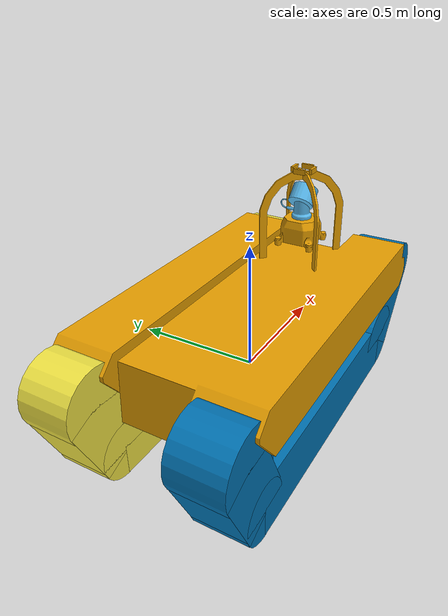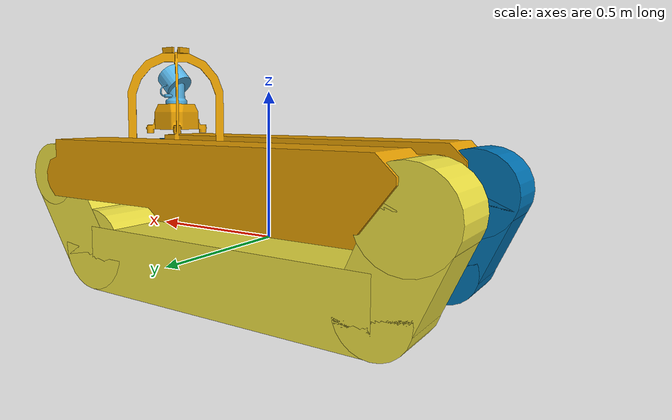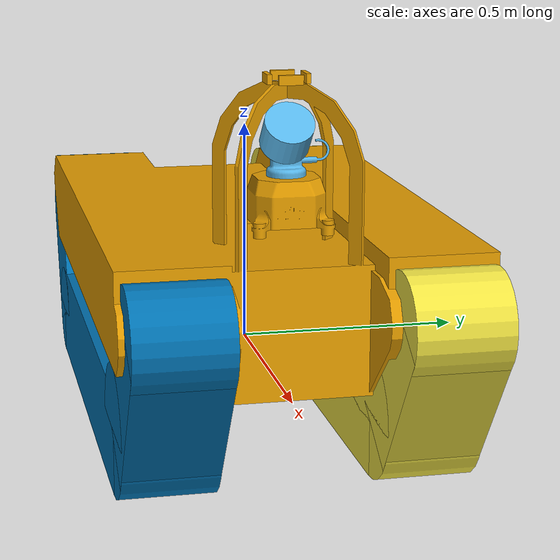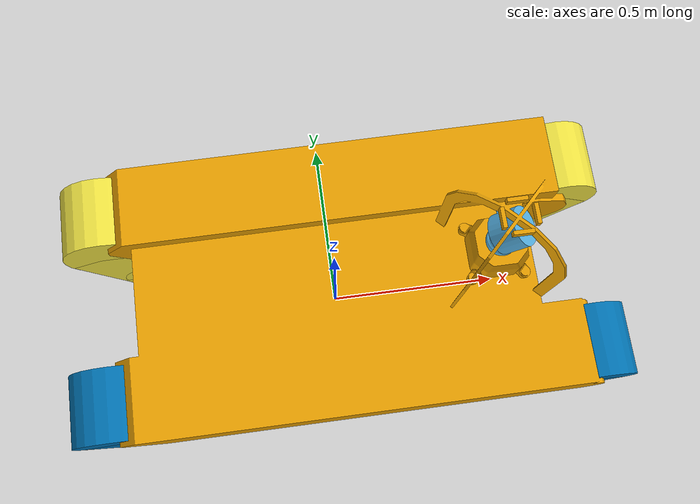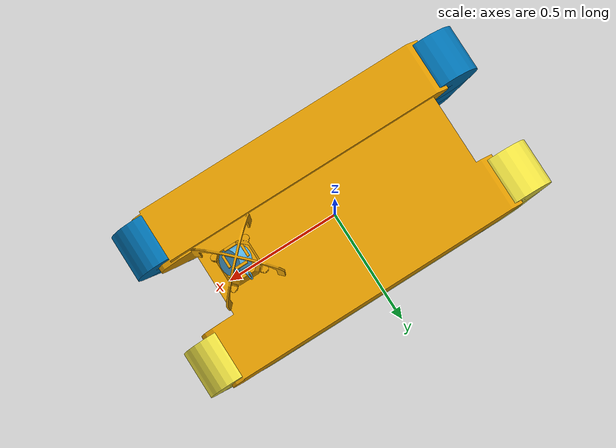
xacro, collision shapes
<?xml version='1.0' encoding='utf-8'?>
<robot name='csiro_data61_ozbot_atr_sensor_config_1' xmlns:xacro='http://ros.org/wiki/xacro'>
  <xacro:arg name="name" default="csiro_data61_ozbot_atr_sensor_config_1"/>
  <xacro:property name="robot_namespace" value="$(arg name)"/>
  <link name='${robot_namespace}/base_link'>
    <inertial>
      <origin xyz='0.060405 0.000498 0.179911' rpy='0 -0 0'/>
      <mass value='100.714'/>
      <inertia ixx='3.64426' ixy='-0.00724495' ixz='0.086827' iyy='14.667' iyz='-0.00505966' izz='15.6438'/>
    </inertial>
    <collision name='base_link_fixed_joint_lump__nav_base_link_collision'>
      <origin xyz='0.433 0 0.423' rpy='0 -0 0'/>
      <geometry>
        <mesh filename='package://csiro_data61_ozbot_atr_sensor_config_1/meshes/PPV4_Sim_Base.STL' scale='1 1 1'/>
      </geometry>
    </collision>
    <collision name='base_link_fixed_joint_lump__light0_collision_1'>
      <origin xyz='0.473 0 0.663' rpy='0 -0 0'/>
      <geometry>
        <box size='0.01 0.05 0.02'/>
      </geometry>
    </collision>
    <collision name='base_link_fixed_joint_lump__light1_collision_2'>
      <origin xyz='0.433 0.04 0.663' rpy='0 -0 1.5708'/>
      <geometry>
        <box size='0.01 0.05 0.02'/>
      </geometry>
    </collision>
    <collision name='base_link_fixed_joint_lump__light2_collision_3'>
      <origin xyz='0.393 0 0.663' rpy='0 0 -3.14159'/>
      <geometry>
        <box size='0.01 0.05 0.02'/>
      </geometry>
    </collision>
    <collision name='base_link_fixed_joint_lump__light3_collision_4'>
      <origin xyz='0.433 -0.04 0.663' rpy='0 0 -1.5708'/>
      <geometry>
        <box size='0.01 0.05 0.02'/>
      </geometry>
    </collision>
    <collision name='base_link_fixed_joint_lump__titan_chassis_collision_5'>
      <origin xyz='0 0 0' rpy='0 -0 0'/>
      <geometry>
        <mesh filename='package://csiro_data61_ozbot_atr_sensor_config_1/meshes/Titan_Collision.STL' scale='1 1 1'/>
      </geometry>
    </collision>
    <visual name='base_link_fixed_joint_lump__nav_base_link_visual'>
      <origin xyz='0.433 0 0.423' rpy='0 -0 0'/>
      <geometry>
        <mesh filename='package://csiro_data61_ozbot_atr_sensor_config_1/meshes/PPV4_Sim_Base.STL' scale='1 1 1'/>
      </geometry>
    </visual>
    <visual name='base_link_fixed_joint_lump__light0_visual_1'>
      <origin xyz='0.473 0 0.663' rpy='0 -0 0'/>
      <geometry>
        <box size='0.01 0.05 0.02'/>
      </geometry>
    </visual>
    <visual name='base_link_fixed_joint_lump__light1_visual_2'>
      <origin xyz='0.433 0.04 0.663' rpy='0 -0 1.5708'/>
      <geometry>
        <box size='0.01 0.05 0.02'/>
      </geometry>
    </visual>
    <visual name='base_link_fixed_joint_lump__light2_visual_3'>
      <origin xyz='0.393 0 0.663' rpy='0 0 -3.14159'/>
      <geometry>
        <box size='0.01 0.05 0.02'/>
      </geometry>
    </visual>
    <visual name='base_link_fixed_joint_lump__light3_visual_4'>
      <origin xyz='0.433 -0.04 0.663' rpy='0 0 -1.5708'/>
      <geometry>
        <box size='0.01 0.05 0.02'/>
      </geometry>
    </visual>
    <visual name='base_link_fixed_joint_lump__titan_chassis_visual_5'>
      <origin xyz='0 0 0' rpy='0 -0 0'/>
      <geometry>
        <mesh filename='package://csiro_data61_ozbot_atr_sensor_config_1/meshes/Titan_Visual.dae' scale='1 1 1'/>
      </geometry>
    </visual>
  </link>
  <link name='${robot_namespace}/encoder_rotating_link'>
    <inertial>
      <origin xyz='0.004659 0 0.061904' rpy='0 -0 0'/>
      <mass value='1.328'/>
      <inertia ixx='0.00515062' ixy='1.99615e-16' ixz='-0.000124068' iyy='0.00506893' iyz='-3.27008e-15' izz='0.00258497'/>
    </inertial>
    <collision name='encoder_rotating_link_collision'>
      <origin xyz='0 0 0' rpy='0 -0 0'/>
      <geometry>
        <mesh filename='package://csiro_data61_ozbot_atr_sensor_config_1/meshes/PPV4_Sim_Laser_Assembly.STL' scale='1 1 1'/>
      </geometry>
    </collision>
    <collision name='encoder_rotating_link_fixed_joint_lump__nav_velodyne_base_link_collision_1'>
      <origin xyz='0.00735 0 0.097852' rpy='-0.785398 0 -1.5708'/>
      <geometry>
        <cylinder radius='0.0516' length='0.0717'/>
      </geometry>
    </collision>
    <visual name='encoder_rotating_link_visual'>
      <origin xyz='0 0 0' rpy='0 -0 0'/>
      <geometry>
        <mesh filename='package://csiro_data61_ozbot_atr_sensor_config_1/meshes/PPV4_Sim_Laser_Assembly.STL' scale='1 1 1'/>
      </geometry>
    </visual>
    <visual name='encoder_rotating_link_fixed_joint_lump__nav_velodyne_base_link_visual_1'>
      <origin xyz='-0.018 0 0.072503' rpy='-0.785398 0 -1.5708'/>
      <geometry>
        <mesh filename='package://csiro_data61_ozbot_atr_sensor_config_1/meshes/VLP16_base_1.dae' scale='1 1 1'/>
      </geometry>
    </visual>
    <visual name='encoder_rotating_link_fixed_joint_lump__nav_velodyne_base_link_visual_2'>
      <origin xyz='-0.018 0 0.072503' rpy='-0.785398 0 -1.5708'/>
      <geometry>
        <mesh filename='package://csiro_data61_ozbot_atr_sensor_config_1/meshes/VLP16_base_2.dae' scale='1 1 1'/>
      </geometry>
    </visual>
    <visual name='encoder_rotating_link_fixed_joint_lump__nav_velodyne_visual_3'>
      <origin xyz='-0.018 0 0.072503' rpy='-0.785398 0 -1.5708'/>
      <geometry>
        <mesh filename='package://csiro_data61_ozbot_atr_sensor_config_1/meshes/VLP16_scan.dae' scale='1 1 1'/>
      </geometry>
    </visual>
  </link>
  <sensor name='gpu_lidar' update_rate='20'>
    <parent link='${robot_namespace}/encoder_rotating_link'/>
    <origin xyz='0.008658 0 0.099161' rpy='-0.785398 0 -1.5708'/>
  </sensor>
  <link name='${robot_namespace}/nav_imu'>
    <inertial>
      <origin xyz='0.004061 0.003452 0.012413' rpy='0 -0 0'/>
      <mass value='0.3'/>
      <inertia ixx='0.000467046' ixy='-2.10243e-06' ixz='-7.56055e-06' iyy='0.000467732' iyz='-6.42715e-06' izz='0.000874443'/>
    </inertial>
    <collision name='nav_imu_collision'>
      <origin xyz='0 0 0' rpy='0 -0 0'/>
      <geometry>
        <box size='0.01 0.01 0.01'/>
      </geometry>
    </collision>
    <collision name='nav_imu_fixed_joint_lump__camera_front_link_collision_1'>
      <origin xyz='0.071718 0.005178 0.01862' rpy='0 -0.261799 0'/>
      <geometry>
        <box size='0.001 0.02 0.02'/>
      </geometry>
    </collision>
    <collision name='nav_imu_fixed_joint_lump__camera_left_link_collision_2'>
      <origin xyz='0.006091 0.070805 0.01862' rpy='0 -0.261799 1.5708'/>
      <geometry>
        <box size='0.001 0.02 0.02'/>
      </geometry>
    </collision>
    <collision name='nav_imu_fixed_joint_lump__camera_rear_link_collision_3'>
      <origin xyz='-0.059537 0.005178 0.01862' rpy='0 -0.261799 -3.14159'/>
      <geometry>
        <box size='0.001 0.02 0.02'/>
      </geometry>
    </collision>
    <collision name='nav_imu_fixed_joint_lump__camera_right_link_collision_4'>
      <origin xyz='0.006091 -0.06045 0.01862' rpy='0 -0.261799 -1.5708'/>
      <geometry>
        <box size='0.001 0.02 0.02'/>
      </geometry>
    </collision>
    <visual name='nav_imu_visual'>
      <origin xyz='0 0 0' rpy='0 -0 0'/>
      <geometry>
        <box size='0.01 0.01 0.01'/>
      </geometry>
    </visual>
    <visual name='nav_imu_fixed_joint_lump__camera_front_link_visual_1'>
      <origin xyz='0.071718 0.005178 0.01862' rpy='0 -0.261799 0'/>
      <geometry>
        <box size='0.001 0.02 0.02'/>
      </geometry>
    </visual>
    <visual name='nav_imu_fixed_joint_lump__camera_left_link_visual_2'>
      <origin xyz='0.006091 0.070805 0.01862' rpy='0 -0.261799 1.5708'/>
      <geometry>
        <box size='0.001 0.02 0.02'/>
      </geometry>
    </visual>
    <visual name='nav_imu_fixed_joint_lump__camera_rear_link_visual_3'>
      <origin xyz='-0.059537 0.005178 0.01862' rpy='0 -0.261799 -3.14159'/>
      <geometry>
        <box size='0.001 0.02 0.02'/>
      </geometry>
    </visual>
    <visual name='nav_imu_fixed_joint_lump__camera_right_link_visual_4'>
      <origin xyz='0.006091 -0.06045 0.01862' rpy='0 -0.261799 -1.5708'/>
      <geometry>
        <box size='0.001 0.02 0.02'/>
      </geometry>
    </visual>
  </link>
  <sensor name='camera_front' update_rate='1'>
    <parent link='${robot_namespace}/nav_imu'/>
    <origin xyz='0.071718 0.005178 0.01862' rpy='0 -0.261799 0'/>
    <camera>
      <image width='2016' height='1512' format='R8G8B8' hfov='1.5708' near='0.02' far='300' />
    </camera>
  </sensor>
  <sensor name='camera_left' update_rate='1'>
    <parent link='${robot_namespace}/nav_imu'/>
    <origin xyz='0.006091 0.070805 0.01862' rpy='0 -0.261799 1.5708'/>
    <camera>
      <image width='2016' height='1512' format='R8G8B8' hfov='1.5708' near='0.02' far='300' />
    </camera>
  </sensor>
  <sensor name='camera_rear' update_rate='1'>
    <parent link='${robot_namespace}/nav_imu'/>
    <origin xyz='-0.059537 0.005178 0.01862' rpy='0 -0.261799 -3.14159'/>
    <camera>
      <image width='2016' height='1512' format='R8G8B8' hfov='1.5708' near='0.02' far='300' />
    </camera>
  </sensor>
  <sensor name='camera_right' update_rate='1'>
    <parent link='${robot_namespace}/nav_imu'/>
    <origin xyz='0.006091 -0.06045 0.01862' rpy='0 -0.261799 -1.5708'/>
    <camera>
      <image width='2016' height='1512' format='R8G8B8' hfov='1.5708' near='0.02' far='300' />
    </camera>
  </sensor>
  <sensor name='imu' update_rate='100'>
    <parent link='${robot_namespace}/nav_imu'/>
    <origin xyz='0 0 0' rpy='0 -0 0'/>
  </sensor>
  <link name='${robot_namespace}/left_track'>
    <inertial>
      <origin xyz='0 0 0' rpy='0 -0 0'/>
      <mass value='2'/>
      <inertia ixx='0.1467' ixy='0' ixz='0' iyy='2.0754' iyz='0' izz='2.0754'/>
    </inertial>
    <collision name='left_11_wheel_collision'>
      <origin xyz='-0.64 0 0.183' rpy='1.5708 -0 0'/>
      <geometry>
        <cylinder radius='0.14' length='0.2'/>
      </geometry>
    </collision>
    <visual name='left_11_wheel_visual'>
      <origin xyz='-0.64 0 0.183' rpy='1.5708 -0 0'/>
      <geometry>
        <cylinder radius='0.14' length='0.2'/>
      </geometry>
    </visual>
    <collision name='left_1_wheel_collision'>
      <origin xyz='0.693 0 0.21' rpy='1.5708 -0 0'/>
      <geometry>
        <cylinder radius='0.11' length='0.2'/>
      </geometry>
    </collision>
    <visual name='left_1_wheel_visual'>
      <origin xyz='0.693 0 0.21' rpy='1.5708 -0 0'/>
      <geometry>
        <cylinder radius='0.11' length='0.2'/>
      </geometry>
    </visual>
    <collision name='left_3_wheel_collision'>
      <origin xyz='0.485 0 -0.037758' rpy='1.5708 -0 0'/>
      <geometry>
        <cylinder radius='0.14' length='0.2'/>
      </geometry>
    </collision>
    <visual name='left_3_wheel_visual'>
      <origin xyz='0.485 0 -0.037758' rpy='1.5708 -0 0'/>
      <geometry>
        <cylinder radius='0.14' length='0.2'/>
      </geometry>
    </visual>
    <collision name='left_9_wheel_collision'>
      <origin xyz='-0.56 0 -0.07' rpy='1.5708 -0 0'/>
      <geometry>
        <cylinder radius='0.11' length='0.2'/>
      </geometry>
    </collision>
    <visual name='left_9_wheel_visual'>
      <origin xyz='-0.56 0 -0.07' rpy='1.5708 -0 0'/>
      <geometry>
        <cylinder radius='0.11' length='0.2'/>
      </geometry>
    </visual>
    <collision name='left_bottom_box_collision'>
      <origin xyz='-0.0375 0 -0.068' rpy='0 0 0'/>
      <geometry>
        <box size='1.045 0.2 0.22' />
      </geometry>
    </collision>
    <visual name='left_bottom_box_visual'>
      <origin xyz='-0.0375 0 -0.068' rpy='0 0 0'/>
      <geometry>
        <box size='1.045 0.2 0.22' />
      </geometry>
    </visual>
    <collision name='left_rear_box_collision'>
      <origin xyz='-0.612 0 0.05114' rpy='0 1.15017 0'/>
      <geometry>
        <box size='0.285 0.2 0.22' />
      </geometry>
    </collision>
    <visual name='left_rear_box_visual'>
      <origin xyz='-0.612 0 0.05114' rpy='0 1.15017 0'/>
      <geometry>
        <box size='0.285 0.2 0.22' />
      </geometry>
    </visual>
    <collision name='left_front_box_collision'>
      <origin xyz='0.6 0 0.07898' rpy='0 -0.96517 0'/>
      <geometry>
        <box size='0.35 0.2 0.22' />
      </geometry>
    </collision>
    <visual name='left_front_box_visual'>
      <origin xyz='0.6 0 0.07898' rpy='0 -0.96517 0'/>
      <geometry>
        <box size='0.35 0.2 0.22' />
      </geometry>
    </visual>
  </link>
  <joint name='left_track_j' type='fixed'>
    <origin xyz='0 0.269 0' rpy='0 0 0'/>
    <parent link='${robot_namespace}/base_link'/>
    <child link='${robot_namespace}/left_track'/>
  </joint>

  <link name='${robot_namespace}/right_track'>
    <inertial>
      <origin xyz='0 0 0' rpy='0 -0 0'/>
      <mass value='2'/>
      <inertia ixx='0.1467' ixy='0' ixz='0' iyy='2.0754' iyz='0' izz='2.0754'/>
    </inertial>
    <collision name='right_11_wheel_collision'>
      <origin xyz='-0.64 0 0.183' rpy='1.5708 -0 0'/>
      <geometry>
        <cylinder radius='0.14' length='0.2'/>
      </geometry>
    </collision>
    <visual name='right_11_wheel_visual'>
      <origin xyz='-0.64 0 0.183' rpy='1.5708 -0 0'/>
      <geometry>
        <cylinder radius='0.14' length='0.2'/>
      </geometry>
    </visual>
    <collision name='right_1_wheel_collision'>
      <origin xyz='0.693 0 0.21' rpy='1.5708 -0 0'/>
      <geometry>
        <cylinder radius='0.11' length='0.2'/>
      </geometry>
    </collision>
    <visual name='right_1_wheel_visual'>
      <origin xyz='0.693 0 0.21' rpy='1.5708 -0 0'/>
      <geometry>
        <cylinder radius='0.11' length='0.2'/>
      </geometry>
    </visual>
    <collision name='right_3_wheel_collision'>
      <origin xyz='0.485 0 -0.037758' rpy='1.5708 -0 0'/>
      <geometry>
        <cylinder radius='0.14' length='0.2'/>
      </geometry>
    </collision>
    <visual name='right_3_wheel_visual'>
      <origin xyz='0.485 0 -0.037758' rpy='1.5708 -0 0'/>
      <geometry>
        <cylinder radius='0.14' length='0.2'/>
      </geometry>
    </visual>
    <collision name='right_9_wheel_collision'>
      <origin xyz='-0.56 0 -0.07' rpy='1.5708 -0 0'/>
      <geometry>
        <cylinder radius='0.11' length='0.2'/>
      </geometry>
    </collision>
    <visual name='right_9_wheel_visual'>
      <origin xyz='-0.56 0 -0.07' rpy='1.5708 -0 0'/>
      <geometry>
        <cylinder radius='0.11' length='0.2'/>
      </geometry>
    </visual>
    <collision name='right_bottom_box_collision'>
      <origin xyz='-0.0375 0 -0.068' rpy='0 0 0'/>
      <geometry>
        <box size='1.045 0.2 0.22' />
      </geometry>
    </collision>
    <visual name='right_bottom_box_visual'>
      <origin xyz='-0.0375 0 -0.068' rpy='0 0 0'/>
      <geometry>
        <box size='1.045 0.2 0.22' />
      </geometry>
    </visual>
    <collision name='right_rear_box_collision'>
      <origin xyz='-0.612 0 0.05114' rpy='0 1.15017 0'/>
      <geometry>
        <box size='0.285 0.2 0.22' />
      </geometry>
    </collision>
    <visual name='right_rear_box_visual'>
      <origin xyz='-0.612 0 0.05114' rpy='0 1.15017 0'/>
      <geometry>
        <box size='0.285 0.2 0.22' />
      </geometry>
    </visual>
    <collision name='right_front_box_collision'>
      <origin xyz='0.6 0 0.07898' rpy='0 -0.96517 0'/>
      <geometry>
        <box size='0.35 0.2 0.22' />
      </geometry>
    </collision>
    <visual name='right_front_box_visual'>
      <origin xyz='0.6 0 0.07898' rpy='0 -0.96517 0'/>
      <geometry>
        <box size='0.35 0.2 0.22' />
      </geometry>
    </visual>
  </link>
  <joint name='right_track_j' type='fixed'>
    <origin xyz='0 -0.269 0' rpy='0 0 0'/>
    <parent link='${robot_namespace}/base_link'/>
    <child link='${robot_namespace}/right_track'/>
  </joint>

  <joint name='lidar_gimbal' type='revolute'>
    <origin xyz='0.433 0 0.453797' rpy='0 -0 0'/>
    <parent link='${robot_namespace}/base_link'/>
    <child link='${robot_namespace}/encoder_rotating_link'/>
    <dynamics damping='0' friction='0' />
    <axis xyz='0 0 1'/>
    <limit lower='-1e+16' upper='1e+16' effort='-1' velocity='3.14159'/>
  </joint>
  <joint name='nav_base_link_to_imu' type='revolute'>
    <origin xyz='0.426909 -0.005178 0.423' rpy='0 -0 0'/>
    <parent link='${robot_namespace}/base_link'/>
    <child link='${robot_namespace}/nav_imu'/>
    <dynamics damping='0' friction='0' />
    <axis xyz='1 0 0'/>
    <limit lower='0' upper='0' effort='0' velocity='0'/>
  </joint>
</robot>
